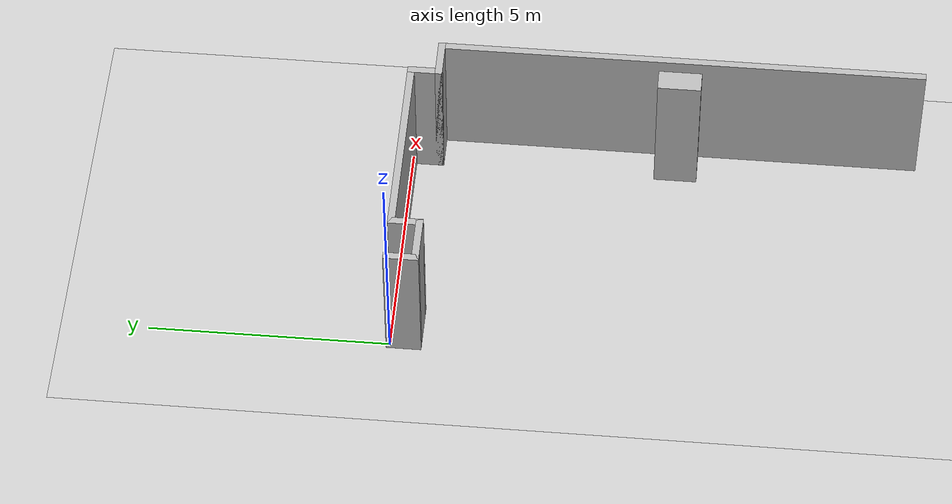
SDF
<?xml version="1.0" ?>
<sdf version="1.6">
  <world name="sketch_layout">

    <include>
      <uri>model://ground_plane</uri>
    </include>
    <include>
      <uri>model://sun</uri>
    </include>

    <gui>
      <camera name="user_camera">
        <pose>2.8 -5.3 20 0 1.5708 0</pose>
        <projection_type>orthographic</projection_type>
      </camera>
    </gui>

    <model name="sketch_layout_walls">
      <static>true</static>
      <pose>0 0 0 0 0 0</pose>
      <link name="link">

        <!-- S2: west side of notch 1 -->
        <visual name="v_s2"><pose>0 -0.2875 1.5 0 0 0</pose>
          <geometry><box><size>0.15 0.725 3.0</size></box></geometry>
        </visual>
        <collision name="c_s2"><pose>0 -0.2875 1.5 0 0 0</pose>
          <geometry><box><size>0.15 0.725 3.0</size></box></geometry>
        </collision>

        <!-- S3: floor of notch 1 -->
        <visual name="v_s3"><pose>0.45 -0.575 1.5 0 0 0</pose>
          <geometry><box><size>1.05 0.15 3.0</size></box></geometry>
        </visual>
        <collision name="c_s3"><pose>0.45 -0.575 1.5 0 0 0</pose>
          <geometry><box><size>1.05 0.15 3.0</size></box></geometry>
        </collision>

        <!-- S4: east side of notch 1 -->
        <visual name="v_s4"><pose>0.9 -0.2875 1.5 0 0 0</pose>
          <geometry><box><size>0.15 0.725 3.0</size></box></geometry>
        </visual>
        <collision name="c_s4"><pose>0.9 -0.2875 1.5 0 0 0</pose>
          <geometry><box><size>0.15 0.725 3.0</size></box></geometry>
        </collision>

        <!-- S5: top wall, 4.0 m run after notch 1 -->
        <visual name="v_s5"><pose>2.9 0 1.5 0 0 0</pose>
          <geometry><box><size>4.15 0.15 3.0</size></box></geometry>
        </visual>
        <collision name="c_s5"><pose>2.9 0 1.5 0 0 0</pose>
          <geometry><box><size>4.15 0.15 3.0</size></box></geometry>
        </collision>

        <!-- S6: 0.575 step down -->
        <visual name="v_s6"><pose>4.9 -0.2875 1.5 0 0 0</pose>
          <geometry><box><size>0.15 0.725 3.0</size></box></geometry>
        </visual>
        <collision name="c_s6"><pose>4.9 -0.2875 1.5 0 0 0</pose>
          <geometry><box><size>0.15 0.725 3.0</size></box></geometry>
        </collision>

        <!-- S7: 0.7 m run to the long wall -->
        <visual name="v_s7"><pose>5.25 -0.575 1.5 0 0 0</pose>
          <geometry><box><size>0.85 0.15 3.0</size></box></geometry>
        </visual>
        <collision name="c_s7"><pose>5.25 -0.575 1.5 0 0 0</pose>
          <geometry><box><size>0.85 0.15 3.0</size></box></geometry>
        </collision>

        <!-- S8: long wall, 10 m -->
        <visual name="v_s8"><pose>5.6 -5.575 1.5 0 0 0</pose>
          <geometry><box><size>0.15 10.15 3.0</size></box></geometry>
        </visual>
        <collision name="c_s8"><pose>5.6 -5.575 1.5 0 0 0</pose>
          <geometry><box><size>0.15 10.15 3.0</size></box></geometry>
        </collision>

        <!-- Pillar: free-standing bump-out near the long wall -->
        <visual name="v_pillar"><pose>5.055 -5.575 1.5 0 0 0</pose>
          <geometry><box><size>0.46 0.9 3.0</size></box></geometry>
        </visual>
        <collision name="c_pillar"><pose>5.055 -5.575 1.5 0 0 0</pose>
          <geometry><box><size>0.46 0.9 3.0</size></box></geometry>
        </collision>

      </link>
    </model>

  </world>
</sdf>
